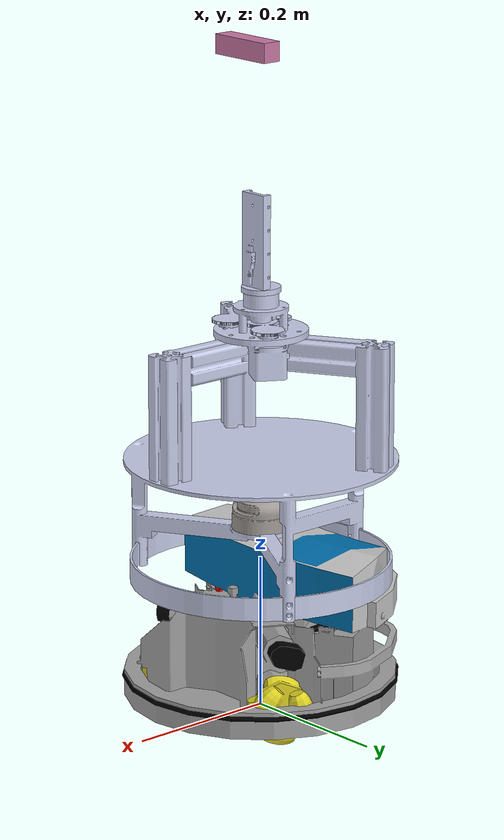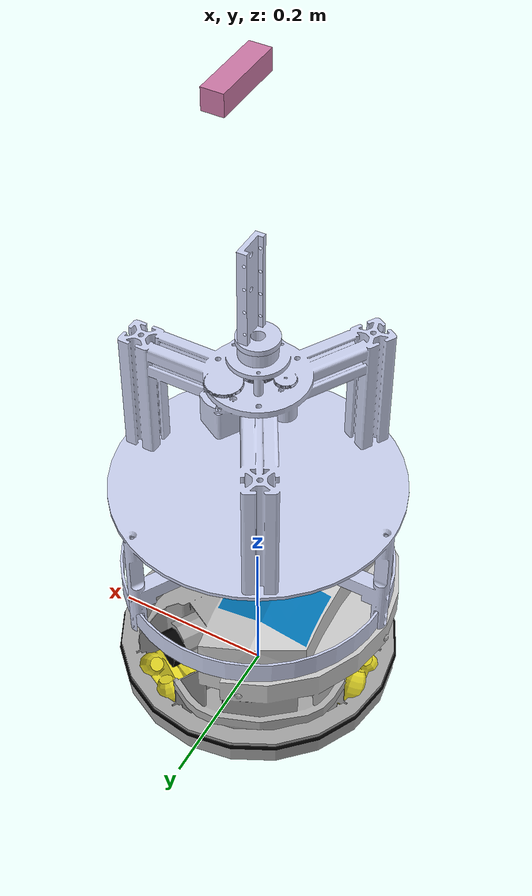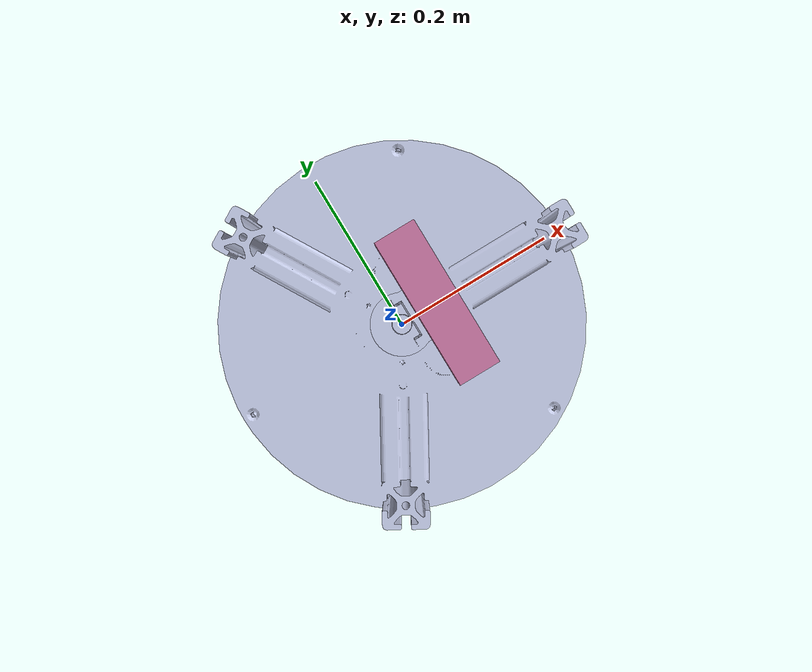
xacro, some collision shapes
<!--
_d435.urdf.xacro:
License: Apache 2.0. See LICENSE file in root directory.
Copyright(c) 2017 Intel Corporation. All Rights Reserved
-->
<?xml version="1.0"?>
<robot name="robotino" xmlns:xacro="http://wiki.ros.org/xacro">

    <xacro:include filename="$(find robotino_description)/urdf/robotino_body_sim.urdf.xacro"/>
    <xacro:include filename="$(find robotino_description)/urdf/robotino_parts_sim.urdf.xacro"/>
    <xacro:robotino_body/>

    <xacro:include filename="$(find realsense2_description)/urdf/_d435.urdf.xacro"/>
    <xacro:arg name="use_nominal_extrinsics" default="true"/>
    <xacro:sensor_d435
        parent="cameraholder_link">
        <origin xyz="0 0 0.52" rpy="0 0 0"/>

    </xacro:sensor_d435>

</robot>

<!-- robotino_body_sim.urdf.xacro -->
<robot xmlns:xacro="http://wiki.ros.org/xacro">
    <xacro:property name="M_SCALE" value="0.01"/>
    <xacro:property name="BASE_RADIUS" value="0.18"/>
    <xacro:property name="BASE_HEIGHT" value="0.03"/>
    <xacro:property name="BASE_MASS" value="0.5"/>

    <xacro:property name="M_PI" value="3.1415926535897931"/>
    <xacro:property name="width" value="0.5"/> <!-- Square dimensions (widthxwidth) of beams -->
    <xacro:property name="height" value="0.5"/> <!-- Link 1 -->
    <xacro:property name="width_2" value="0.1"/> <!-- Square dimensions (widthxwidth) of beams -->
    <xacro:property name="height_2" value="0.5"/> <!-- Link 1 -->
    <xacro:property name="axel_offset" value="0.05"/> <!-- Space btw top of beam and the each joint -->

    <xacro:property name="roll" value="${M_PI/2}"/> <!-- Space btw top of beam and the each joint -->
    <xacro:property name="yaw" value="${M_PI/2}"/> <!-- Space btw top of beam and the each joint -->

    <xacro:macro name="base_gazebo" params="name">
        <gazebo reference="origin">
            <material>Gazebo/Grey</material>
            <gravity>true</gravity>
            <self_collide>false</self_collide>
        </gazebo>
        <gazebo reference="base_link">
            <material>Gazebo/Grey</material>
            <gravity>true</gravity>
            <self_collide>false</self_collide>
        </gazebo>
        <gazebo reference="${name}_body_link">
            <material>Gazebo/Grey</material>
            <gravity>true</gravity>
            <self_collide>false</self_collide>
        </gazebo>
    </xacro:macro>

    <link name="world"/>

    <joint name="joint_x" type="prismatic">
        <parent link="world"/>
        <child link="int_link_xy"/>
        <origin xyz="0 0 0" rpy="0 0 0"/>
        <axis xyz="1 0 0"/>
        <limit effort="10" velocity="10" lower="-1000" upper="1000"/>
    </joint>

    <link name="int_link_xy">
        <inertial>
            <mass value="0.001"/>
            <origin xyz="0 0 0"/>
            <inertia ixx="0.0" ixy="0.0" ixz="0.0"
                     iyy="0.000" iyz="0.0"
                     izz="0.000"/>
        </inertial>
    </link>

    <joint name="joint_y" type="prismatic">
        <parent link="int_link_xy"/>
        <child link="int_link_yw"/>
        <origin xyz="0 0 0" rpy="0 0 0"/>
        <axis xyz="0 1 0"/>
        <limit effort="10" velocity="10" lower="-1000" upper="1000"/>
    </joint>

    <link name="int_link_yw">
        <inertial>
            <mass value="0.001"/>
            <origin xyz="0 0 0"/>
            <inertia ixx="0.000" ixy="0.0" ixz="0.0"
                     iyy="0.000" iyz="0.0"
                     izz="0.00"/>
        </inertial>
    </link>

    <joint name="revolute_w" type="continuous">
        <origin xyz="0 0 0" rpy="0 0 0"/>
        <parent link="int_link_yw"/>
        <child link="base_link"/>
        <axis xyz="0 0 1"/>
    </joint>

    <!-- robotino_body -->
    <xacro:macro name="robotino_body">
        <!-- base_link -->
        <link name="base_link"/>

        <joint name="base_body_joint" type="fixed">
            <parent link="base_link"/>
            <child link="base_body_link"/>
            <origin xyz="0 0 0" rpy="0 0 0"/>
        </joint>

        <link name="base_body_link">
            <inertial>
                <mass value="${BASE_MASS}"/>
                <origin xyz="0 0 0.05"/>
                <inertia ixx="0.8750" ixy="0.0" ixz="0.0"
                         iyy="0.875" iyz="0.0"
                         izz="1"/>
            </inertial>
            <visual>
                <origin xyz="0.01 0 0" rpy="0 0 ${M_PI/2}"/>
                <geometry>
                    <mesh filename="package://robotino_description/meshes/parts/robotino_base.dae"
                          scale="${M_SCALE} ${M_SCALE} ${M_SCALE}"/>
                </geometry>
            </visual>
            <collision>
                <origin xyz="0 0 0" rpy="0 0 ${M_PI/2}"/>
                <geometry>
                    <mesh filename="package://robotino_description/meshes/parts/robotino_base.stl"
                          scale="${M_SCALE} ${M_SCALE} ${M_SCALE}"/>
                </geometry>
            </collision>
        </link>
        <gazebo reference="base_link">
            <material>Gazebo/White</material>
            <turnGravityOff>false</turnGravityOff>
        </gazebo>
        <!-- wheels -->
        <xacro:wheel name="wheel0" parent="base_link">
            <origin xyz="0.065 0.11 0.04" rpy="0 0 ${M_PI/3}"/>
            <axis xyz="-1 0 0"/>
        </xacro:wheel>
        <xacro:wheel name="wheel1" parent="base_link">
            <origin xyz="-0.13 0 0.04" rpy="0 0 ${M_PI}"/>
            <axis xyz="-1 0 0"/>
        </xacro:wheel>
        <xacro:wheel name="wheel2" parent="base_link">
            <origin xyz="0.065 -0.11 0.04" rpy="0 0 -${M_PI/3}"/>
            <axis xyz="-1 0 0"/>
        </xacro:wheel>

        <!-- others -->
        <!-- lasersensor -->
        <xacro:lasersensor name="lasersensor" parent="base_link">
            <origin xyz="0.0 0 0.26" rpy="0 0 0"/>
        </xacro:lasersensor>

        <!-- pantilt holder part 1-->
        <xacro:pantilt name="pantilt" parent="base_link">
            <origin xyz="0.0 0 0.33" rpy="0 0 0"/>
        </xacro:pantilt>

        <!-- pantilt holder part 2-->
        <xacro:pantiltring name="pantiltring" parent="base_link">
            <origin xyz="0.0 0 0.173" rpy="0 0 0"/>
        </xacro:pantiltring>

        <!-- pantilt holder part 3-->
        <xacro:cameraholder name="cameraholder" parent="pantilt_link">
            <origin xyz="0.0 0 0" rpy="0 0 0"/>
        </xacro:cameraholder>

        <!-- imu -->
        <xacro:imu name="imu" parent="camera_link">
            <origin xyz="0.0 0 0" rpy="0 0 0"/>
        </xacro:imu>

        <!-- gazebo control -->
        <gazebo reference="lasersensor_link">
            <sensor type="ray" name="head_hokuyo_sensor">
                <pose>0 0 0 0 0 0</pose>
                <visualize>true</visualize>
                <update_rate>60</update_rate>
                <ray>
                    <scan>
                        <horizontal>
                            <resolution>1</resolution>
                            <samples>360</samples>
                            <min_angle>-3.14159</min_angle>
                            <max_angle>+3.14159</max_angle>
                        </horizontal>
                    </scan>
                    <range>
                        <min>0.10</min>
                        <max>50.0</max>
                        <resolution>0.01</resolution>
                    </range>
                    <noise>
                        <type>gaussian</type>
                        <mean>0.0</mean>
                        <stddev>0.01</stddev>
                    </noise>
                </ray>
                <plugin name="gazebo_ros_head_hokuyo_controller" filename="libgazebo_ros_laser.so">
                    <topicName>robot/laser/scan</topicName>
                    <robotNamespace>/</robotNamespace>
                    <frameName>lasersensor_link</frameName>
                </plugin>
            </sensor>
        </gazebo>

        <gazebo>
            <plugin name="robotino_plugin" filename="librobotino_plugin.so">
                <jointName>wheel0_joint, wheel1_joint, wheel2_joint, joint_x, joint_y,
                    revolute_w
                </jointName>
            </plugin>
        </gazebo>
        <gazebo>
            <plugin name="robotino_plugin" filename="librobotino_camera_plugin.so"/>
        </gazebo>
        <gazebo>
            <plugin name="gazebo_ros_control" filename="libgazebo_ros_control.so">
                <robotNamespace>/rrbot</robotNamespace>
            </plugin>
        </gazebo>

        <!-- imu -->
        <gazebo>
            <plugin name="imu_cam_controller" filename="libhector_gazebo_ros_imu.so">
                <updateRate>150.0</updateRate>
                <bodyName>cameraholder_link</bodyName>
                <topicName>imu_cam/data</topicName>
                <serviceName>imu_cam_service</serviceName>
                <frame_id>odom</frame_id>
                <alwaysOn>true</alwaysOn>

                <accelGaussianNoise>0.03 0.03 0.03</accelGaussianNoise>
                <accelDrift>0.00 0.00 0.00</accelDrift>

                <rateGaussianNoise>0.01 0.01 0.01</rateGaussianNoise>
                <rateDrift>0.0001 0.0001 0.0001</rateDrift>
            </plugin>

            <plugin name="imu_body_controller" filename="libhector_gazebo_ros_imu.so">
                <updateRate>150.0</updateRate>
                <bodyName>base_link</bodyName>
                <topicName>imu_body/data</topicName>
                <serviceName>imu_body_service</serviceName>
                <frame_id>odom</frame_id>
                <alwaysOn>true</alwaysOn>

                <accelGaussianNoise>0.03 0.03 0.03</accelGaussianNoise>
                <accelDrift>0.00 0.00 0.00</accelDrift>

                <rateGaussianNoise>0.002 0.002 0.002</rateGaussianNoise>
                <rateDrift>0.0001 0.0001 0.0001</rateDrift>
            </plugin>
        </gazebo>
        <gazebo>
            <plugin name="p3d_base_controller" filename="libgazebo_ros_p3d.so">
                <alwaysOn>true</alwaysOn>
                <updateRate>50.0</updateRate>
                <bodyName>base_link</bodyName>
                <topicName>ground_truth/state</topicName>
                <gaussianNoise>0.00</gaussianNoise>
                <frameName>world</frameName>
                <xyzOffsets>0 0 0</xyzOffsets>
                <rpyOffsets>0 0 0</rpyOffsets>
            </plugin>
        </gazebo>
    </xacro:macro>
</robot>

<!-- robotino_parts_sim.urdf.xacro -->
<robot xmlns:xacro="http://wiki.ros.org/xacro">
    <xacro:property name="M_PI" value="3.14159"/>
    <xacro:property name="M_SCALE" value="0.01"/>
    <xacro:property name="PLATFORM_HEIGHT" value="0.58"/>
    <xacro:property name="PLATFORM_RADIUS" value="0.22"/>
    <!-- wheel -->
    <xacro:macro name="wheel" params="parent name *origin *axis">
        <link name="${name}_link">
            <inertial>
                <mass value="2"/>
                <origin xyz="0 0 0" rpy="0 0 0"/>
                <inertia ixx="0.04" ixy="0.0" ixz="0.0" iyy="0.04" iyz="0.0" izz="0.04"/>
            </inertial>
            <visual>
                <origin xyz="0 0 0" rpy="0 0 0"/>
                <geometry>
                    <mesh filename="package://robotino_description/meshes/parts/robotino_wheel.dae"
                          scale="${M_SCALE} ${M_SCALE} ${M_SCALE}"/>
                </geometry>
            </visual>
            <collision>
                <origin xyz="0 0 0" rpy="0 ${M_PI/2} 0"/>
                <geometry>
                    <cylinder length="0.04" radius="0.04"/>
                </geometry>
            </collision>
        </link>
        <gazebo reference="${name}_link">
            <material>Gazebo/Yellow</material>
            <turnGravityOff>false</turnGravityOff>
            <kp value="1000000"/>
            <kd value="1"/>
            <mu2 value="0"/>
            <mu1 value="0"/>
        </gazebo>
        <joint name="${name}_joint" type="continuous">
            <xacro:insert_block name="origin"/>
            <xacro:insert_block name="axis"/>
            <parent link="${parent}"/>
            <child link="${name}_link"/>
        </joint>
    </xacro:macro>
    <!-- laser sensor-->
    <xacro:macro name="lasersensor" params="parent name *origin">
        <link name="${name}_link">
            <inertial>
            <origin
                xyz="-0.00056497 7.11770000114844E-09 0.018756"
                rpy="0 0 0" />
            <mass
                value="0.015915" />
            <inertia
                ixx="7.2795244626149E-05"
                ixy="8.59363271873857E-12"
                ixz="-1.00192037963258E-06"
                iyy="7.06968247556297E-05"
                iyz="-1.1608849365102E-11"
                izz="0.000102602650447107" />
            </inertial>
            <visual>
                <origin xyz="0 0 -0.018756" rpy="1.5707963267949 0 0"/>
                <geometry>
                    <mesh filename="package://robotino_description/lidar/meshes/lidar.STL" />
                </geometry>
                <material
                    name="">
                    <color rgba="0.64314 0.61569 0.6 1" />
                </material>
            </visual>
            <collision>
                <origin xyz="0 0 -0.018756" rpy="1.5707963267949 0 0"/>
                <geometry>
                    <mesh filename="package://robotino_description/lidar/meshes/lidar.STL" />
                </geometry>
            </collision>
        </link>
        <gazebo reference="${name}_link">
            <material>Gazebo/Black</material>
            <turnGravityOff>false</turnGravityOff>
        </gazebo>
        <joint name="${name}_joint" type="fixed">
            <xacro:insert_block name="origin"/>
            <parent link="${parent}"/>
            <child link="${name}_link"/>
        </joint>
    </xacro:macro>
    <!-- pantilt holder part 1-->
    <xacro:macro name="pantilt" params="parent name *origin">
        <link name="${name}_link">
        <inertial>
        <origin
            xyz="-0.00076068 0.053384 -0.00086946"
            rpy="0 0 0" />
        <mass
            value="0.17709" />
        <inertia
            ixx="0.022066"
            ixy="0.00017957"
            ixz="-1.0212E-05"
            iyy="0.016545"
            iyz="0.00019743"
            izz="0.022127" />
        </inertial>
            <visual>
                <origin xyz="0 0 0" rpy="0 0 0" />
                <geometry>
                    <mesh filename="package://robotino_description/pantiltholder/meshes/camerabase_Link.STL" />
                </geometry>
                <material
                    name="">
                    <color rgba="0.79216 0.81961 0.93333 1" />
                </material>
            </visual>
            <collision>
                <origin xyz="0 0 0" rpy="0 0 0" />
                <geometry>
                    <mesh filename="package://robotino_description/pantiltholder/meshes/camerabase_Link.STL" />
                </geometry>
            </collision>
        </link>
        <gazebo reference="${name}_link">
            <turnGravityOff>false</turnGravityOff>
        </gazebo>
        <joint name="${name}_joint" type="fixed">
            <xacro:insert_block name="origin"/>
            <parent link="${parent}"/>
            <child link="${name}_link"/>
        </joint>
    </xacro:macro>
    <!-- pantilt holder part 2-->
    <xacro:macro name="pantiltring" params="parent name *origin">
        <link name="${name}_link">
            <inertial>
            <origin
                xyz="4.0968E-16 -0.015 9.18454765366783E-19"
                rpy="0 0 0" />
            <mass
                value="0.094154" />
            <inertia
                ixx="0.001312241311471"
                ixy="-6.9590790831882E-33"
                ixz="-1.3339474659106E-34"
                iyy="0.00261035959316777"
                iyz="-7.94841947889434E-20"
                izz="0.00131224131147099" />
            </inertial>
            <visual>
                <origin xyz="0 0 0" rpy="0 0 0" />
                <geometry>
                    <mesh filename="package://robotino_description/ring/meshes/ring.STL" />
                </geometry>
                <material
                    name="">
                    <color rgba="0.79216 0.81961 0.93333 1" />
                </material>
            </visual>
            <collision>
                <origin xyz="0 0 0" rpy="0 0 0" />
                <geometry>
                    <mesh filename="package://robotino_description/ring/meshes/ring.STL" />
                </geometry>
            </collision>
        </link>
        <gazebo reference="${name}_link">
            <turnGravityOff>false</turnGravityOff>
        </gazebo>
        <joint name="${name}_joint" type="fixed">
            <xacro:insert_block name="origin"/>
            <parent link="${parent}"/>
            <child link="${name}_link"/>
        </joint>
    </xacro:macro>
    <!-- pantilt holder part 3-->
    <xacro:macro name="cameraholder" params="parent name *origin">
        <link name="${name}_link">
        <inertial>
        <origin
            xyz="0.08119 -9.6149E-11 -0.006335"
            rpy="0 0 0" />
        <mass
            value="0.061321" />
        <inertia
            ixx="1.6538E-06"
            ixy="1.156E-14"
            ixz="1.0178E-02"
            iyy="7.7966E-05"
            iyz="-6.9072E-14"
            izz="7.6312E-02" />
        </inertial>
            <visual>
                <origin xyz="0 0 0" rpy="0 0 0" />
                <geometry>
                    <mesh filename="package://robotino_description/pantiltholder/meshes/cameraholder_Link.STL" />
                </geometry>
                <material
                    name="">
                    <color rgba="0.79216 0.81961 0.93333 1" />
                </material>
            </visual>
            <collision>
                <origin xyz="0 0 0" rpy="0 0 0" />
            <geometry>
                <mesh filename="package://robotino_description/pantiltholder/meshes/cameraholder_Link.STL" />
            </geometry>
            </collision>
        </link>
        <joint name="${name}_joint" type="continuous">
            <xacro:insert_block name="origin"/>
            <origin
                xyz="0 0 0"
                rpy="0.050256 -1.5708 0" />
            <parent link="${parent}"/>
            <child link="${name}_link"/>
            <axis xyz="0 0 1" />
        </joint>
    </xacro:macro>

    <!-- imu -->
    <xacro:macro name="imu" params="parent name *origin">
        <link name="imu_link">
            <visual>
                <origin xyz="0 0 0" rpy="0 0 0"/>
                <geometry>
                    <box size="0.018 0.016 0.007"/>
                </geometry>
                <material name="xsens-orange"/>
            </visual>
            <collision>
                <origin xyz="0 0 0" rpy="0 0 0"/>
                <geometry>
                    <box size="0.057 0.041 0.024"/>
                </geometry>
            </collision>
            <inertial>
                <mass value="0"/>
                <origin xyz="0 0 0"/>
                <inertia ixx="1.60333333333e-05" ixy="0.0" ixz="0.0" iyy="2.80333333333e-05" iyz="0.0"
                         izz="1.60333333333e-05"/>
            </inertial>
        </link>
        <joint name="${parent}_to_imu_link" type="fixed">
            <parent link="${parent}"/>
            <child link="imu_link"/>
            <origin xyz="0 0 0" rpy="0 0 0"/>
        </joint>
        <material name="xsens-orange">
            <color rgba="0.8862745098 0.56862745098 0.09019607843 1"/>
        </material>
    </xacro:macro>
</robot>

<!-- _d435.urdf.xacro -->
<robot name="sensor_d435" xmlns:xacro="http://ros.org/wiki/xacro">
  <!-- Includes -->
  <xacro:include filename="$(find realsense2_description)/urdf/_materials.urdf.xacro" />

  <xacro:macro name="sensor_d435" params="parent *origin name:=camera use_nominal_extrinsics:=false topics_ns:=camera  publish_pointcloud:=false ">
    <xacro:property name="M_PI" value="3.1415926535897931" />

    <!-- The following values are approximate, and the camera node
     publishing TF values with actual calibrated camera extrinsic values -->
    <xacro:property name="d435_cam_depth_to_left_ir_offset" value="0.0"/>
    <xacro:property name="d435_cam_depth_to_right_ir_offset" value="-0.050"/>
    <xacro:property name="d435_cam_depth_to_color_offset" value="0.015"/>

    <!-- The following values model the aluminum peripherial case for the
  	D435 camera, with the camera joint represented by the actual
  	peripherial camera tripod mount -->
    <xacro:property name="d435_cam_width" value="0.090"/>
    <xacro:property name="d435_cam_height" value="0.025"/>
    <xacro:property name="d435_cam_depth" value="0.02505"/>
    <xacro:property name="d435_cam_mount_from_center_offset" value="0.0149"/>

    <!-- The following offset is relative the the physical D435 camera peripherial
  	camera tripod mount -->
    <xacro:property name="d435_cam_depth_px" value="${d435_cam_mount_from_center_offset}"/>
    <xacro:property name="d435_cam_depth_py" value="0.0175"/>
    <xacro:property name="d435_cam_depth_pz" value="${d435_cam_height/2}"/>

    <!-- camera body, with origin at bottom screw mount -->
    <joint name="${name}_joint" type="fixed">
      <xacro:insert_block name="origin" />
      <parent link="${parent}"/>
      <child link="${name}_bottom_screw_frame" />
    </joint>
    <link name="${name}_bottom_screw_frame"/>

    <joint name="${name}_link_joint" type="fixed">
      <!--origin xyz="${d435_cam_depth_py} 0 ${d435_cam_depth_pz}" rpy="${M_PI/2} 0 0"/-->
      <origin xyz=" ${d435_cam_depth_px*1.5}  ${d435_cam_depth_py} ${d435_cam_depth_pz}" rpy="0 0 0"/>
      <parent link="${name}_bottom_screw_frame"/>
      <child link="${name}_link" />
    </joint>

    <link name="${name}_link">
      <visual>
        <origin xyz="${d435_cam_mount_from_center_offset} ${-d435_cam_depth_py} 0" rpy="${M_PI/2} 0 ${M_PI/2}"/>
        <geometry>
	        <mesh filename="package://realsense2_description/meshes/d435.dae"/>
        </geometry>
      </visual>
      <collision>
        <origin xyz="0 ${-d435_cam_depth_py} 0" rpy="0 0 0"/>
        <geometry>
          <box size="${d435_cam_depth} ${d435_cam_width} ${d435_cam_height}"/>
        </geometry>
      </collision>
      <inertial>
        <!-- The following are not reliable values, and should not be used for modeling -->
        <mass value="0.564" />
        <origin xyz="0 0 0" />
        <inertia ixx="0.003881243" ixy="0.0" ixz="0.0" iyy="0.000498940" iyz="0.0" izz="0.003879257" />
      </inertial>
    </link>

    <!-- Use the nominal extrinsics between camera frames if the calibrated extrinsics aren't being published. e.g. running the device in simulation  -->
    <xacro:if value="$(arg use_nominal_extrinsics)">
      <xacro:include filename="$(find realsense_gazebo_plugin)/urdf/d435.gazebo.xacro"/>

      <!-- camera depth joints and links -->
      <joint name="${name}_depth_joint" type="fixed">
        <origin xyz="0 0 0" rpy="0 0 0"/>
        <parent link="${name}_link"/>
        <child link="${name}_depth_frame" />
      </joint>
      <link name="${name}_depth_frame"/>

      <joint name="${name}_depth_optical_joint" type="fixed">
        <origin xyz="0 0 0" rpy="${-M_PI/2} 0 ${-M_PI/2}" />
        <parent link="${name}_depth_frame" />
        <child link="${name}_depth_optical_frame" />
      </joint>
      <link name="${name}_depth_optical_frame"/>

      <!-- camera left IR joints and links -->
      <joint name="${name}_left_ir_joint" type="fixed">
        <origin xyz="0 ${d435_cam_depth_to_left_ir_offset} 0" rpy="0 0 0" />
        <parent link="${name}_depth_frame" />
        <child link="${name}_left_ir_frame" />
      </joint>
      <link name="${name}_left_ir_frame"/>

      <joint name="${name}_left_ir_optical_joint" type="fixed">
        <origin xyz="0 0 0" rpy="${-M_PI/2} 0 ${-M_PI/2}" />
        <parent link="${name}_left_ir_frame" />
        <child link="${name}_left_ir_optical_frame" />
      </joint>
      <link name="${name}_left_ir_optical_frame"/>

      <!-- camera right IR joints and links -->
      <joint name="${name}_right_ir_joint" type="fixed">
        <origin xyz="0 ${d435_cam_depth_to_right_ir_offset} 0" rpy="0 0 0" />
        <parent link="${name}_depth_frame" />
        <child link="${name}_right_ir_frame" />
      </joint>
      <link name="${name}_right_ir_frame"/>

      <joint name="${name}_right_ir_optical_joint" type="fixed">
        <origin xyz="0 0 0" rpy="${-M_PI/2} 0 ${-M_PI/2}" />
        <parent link="${name}_right_ir_frame" />
        <child link="${name}_right_ir_optical_frame" />
      </joint>
      <link name="${name}_right_ir_optical_frame"/>

      <!-- camera color joints and links -->
      <joint name="${name}_color_joint" type="fixed">
        <origin xyz="0 ${d435_cam_depth_to_color_offset} 0" rpy="0 0 0" />
        <parent link="${name}_depth_frame" />
        <child link="${name}_color_frame" />
      </joint>
      <link name="${name}_color_frame"/>

      <joint name="${name}_color_optical_joint" type="fixed">
        <origin xyz="0 0 0" rpy="${-M_PI/2} 0 ${-M_PI/2}" />
        <parent link="${name}_color_frame" />
        <child link="${name}_color_optical_frame" />
      </joint>
      <link name="${name}_color_optical_frame"/>

      <!-- Realsense Gazebo Plugin -->
      <xacro:gazebo_d435 camera_name="${name}" reference_link="${name}_link" topics_ns="${topics_ns}" depth_optical_frame="${name}_depth_optical_frame" color_optical_frame="${name}_color_optical_frame" publish_pointcloud="${publish_pointcloud}"/> <!-- infrared1_optical_frame="${name}_left_ir_optical_frame" infrared2_optical_frame="${name}_right_ir_optical_frame" -->
    </xacro:if>
  </xacro:macro>
</robot>
